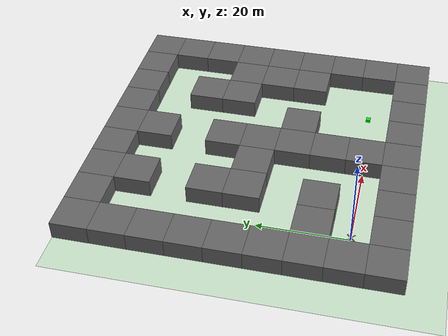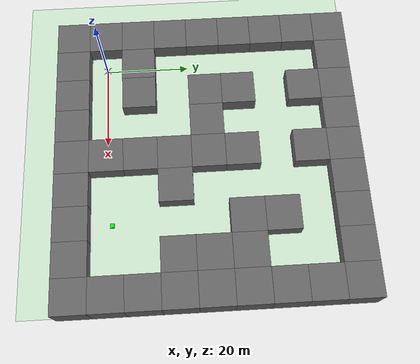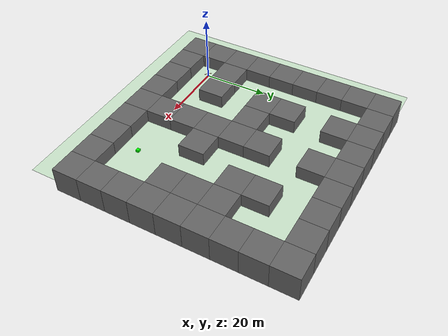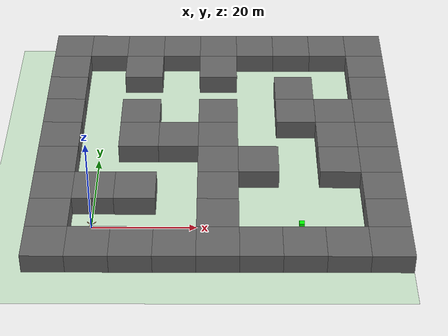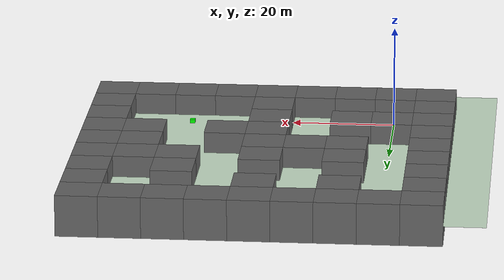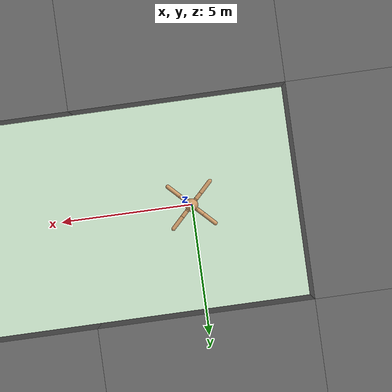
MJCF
<mujoco model="ant">
  <compiler inertiafromgeom="true" angle="degree" coordinate="local" />
  <option timestep="0.02" integrator="RK4" />
  <custom>
    <numeric name="init_qpos" data="0.0 0.0 0.55 1.0 0.0 0.0 0.0 0.0 1.0 0.0 -1.0 0.0 -1.0 0.0 1.0" />
  </custom>
  <default>
    <joint limited="true" armature="1" damping="1" />
    <geom condim="3" conaffinity="0" margin="0.01" friction="1 0.5 0.5" solref=".02 1" solimp=".8 .8 .01" rgba="0.8 0.6 0.4 1" density="5.0" />
  </default>
  <asset>
    <texture type="skybox" builtin="gradient" width="100" height="100" rgb1="1 1 1" rgb2="0 0 0" />
    <texture name="texgeom" type="cube" builtin="flat" mark="cross" width="127" height="1278" rgb1="0.8 0.6 0.4" rgb2="0.8 0.6 0.4" markrgb="1 1 1" random="0.01" />
    <texture name="texplane" type="2d" builtin="checker" rgb1="0 0 0" rgb2="0.8 0.8 0.8" width="100" height="100" />
    <material name='MatPlane' texture="texplane" shininess="1" texrepeat="60 60" specular="1"  reflectance="0.5" />
    <material name='geom' texture="texgeom" texuniform="true" />
  </asset>
  <worldbody>
    <light directional="true" cutoff="100" exponent="1" diffuse="1 1 1" specular=".1 .1 .1" pos="0 0 1.3" dir="-0 0 -1.3" />
    <geom name='floor' pos='20 20 0' size='40 40 40' type='plane' conaffinity='1' rgba='0.8 0.9 0.8 1' condim='3' />
    <body name="torso" pos="0 0 0.75">
      <geom name="torso_geom" type="sphere" size="0.25" pos="0 0 0" />
      <joint name="root" type="free" limited="false" pos="0 0 0" axis="0 0 1" margin="0.01" armature="0" damping="0" />
      <body name="front_left_leg" pos="0 0 0">
        <geom name="aux_1_geom" type="capsule" size="0.08" fromto="0.0 0.0 0.0 0.2 0.2 0.0" />
        <body name="aux_1" pos="0.2 0.2 0">
          <joint name="hip_1" type="hinge" pos="0.0 0.0 0.0" axis="0 0 1" range="-30 30" />
          <geom name="left_leg_geom" type="capsule" size="0.08" fromto="0.0 0.0 0.0 0.2 0.2 0.0" />
          <body pos="0.2 0.2 0">
            <joint name="ankle_1" type="hinge" pos="0.0 0.0 0.0" axis="-1 1 0" range="30 70" />
            <geom name="left_ankle_geom" type="capsule" size="0.08" fromto="0.0 0.0 0.0 0.4 0.4 0.0" />
          </body>
        </body>
      </body>
      <body name="front_right_leg" pos="0 0 0">
        <geom name="aux_2_geom" type="capsule" size="0.08" fromto="0.0 0.0 0.0 -0.2 0.2 0.0" />
        <body name="aux_2" pos="-0.2 0.2 0">
          <joint name="hip_2" type="hinge" pos="0.0 0.0 0.0" axis="0 0 1" range="-30 30" />
          <geom name="right_leg_geom" type="capsule" size="0.08" fromto="0.0 0.0 0.0 -0.2 0.2 0.0" />
          <body pos="-0.2 0.2 0">
            <joint name="ankle_2" type="hinge" pos="0.0 0.0 0.0" axis="1 1 0" range="-70 -30" />
            <geom name="right_ankle_geom" type="capsule" size="0.08" fromto="0.0 0.0 0.0 -0.4 0.4 0.0" />
          </body>
        </body>
      </body>
      <body name="back_leg" pos="0 0 0">
        <geom name="aux_3_geom" type="capsule" size="0.08" fromto="0.0 0.0 0.0 -0.2 -0.2 0.0" />
        <body name="aux_3" pos="-0.2 -0.2 0">
          <joint name="hip_3" type="hinge" pos="0.0 0.0 0.0" axis="0 0 1" range="-30 30" />
          <geom name="back_leg_geom" type="capsule" size="0.08" fromto="0.0 0.0 0.0 -0.2 -0.2 0.0" />
          <body pos="-0.2 -0.2 0">
            <joint name="ankle_3" type="hinge" pos="0.0 0.0 0.0" axis="-1 1 0" range="-70 -30" />
            <geom name="third_ankle_geom" type="capsule" size="0.08" fromto="0.0 0.0 0.0 -0.4 -0.4 0.0" />
          </body>
        </body>
      </body>
      <body name="right_back_leg" pos="0 0 0">
        <geom name="aux_4_geom" type="capsule" size="0.08" fromto="0.0 0.0 0.0 0.2 -0.2 0.0" />
        <body name="aux_4" pos="0.2 -0.2 0">
          <joint name="hip_4" type="hinge" pos="0.0 0.0 0.0" axis="0 0 1" range="-30 30" />
          <geom name="rightback_leg_geom" type="capsule" size="0.08" fromto="0.0 0.0 0.0 0.2 -0.2 0.0" />
          <body pos="0.2 -0.2 0">
            <joint name="ankle_4" type="hinge" pos="0.0 0.0 0.0" axis="1 1 0" range="30 70" />
            <geom name="fourth_ankle_geom" type="capsule" size="0.08" fromto="0.0 0.0 0.0 0.4 -0.4 0.0" />
          </body>
        </body>
      </body>
    </body>

    <body name="goal_point" pos="40.0 1.0 0.12"> <!--name was ee_link--> <!--euler = "-1.570796 0 0"-->
      <site name="goal_point:box" type="box" pos="0.05 0.0 0.0" size="0.5 0.5 0.5"  quat = " 1.0 0.0  0.0 0."     rgba="0 1 0 1" />
    </body>

    <body name="wall" pos="0.0 0.0 0.0">
      <geom name="wall1" type="box" pos="-8 -8 0" size="4 4 4" rgba="0.4 0.4 0.4 1"
                contype="1" conaffinity="1" friction="2 0.1 0.002"/>
      <geom name="wall2" type="box" pos="-8 0 0" size="4 4 4" rgba="0.4 0.4 0.4 1"
                contype="1" conaffinity="1" friction="2 0.1 0.002"/>
      <geom name="wall3" type="box" pos="-8 8 0" size="4 4 4" rgba="0.4 0.4 0.4 1"
                contype="1" conaffinity="1" friction="2 0.1 0.002"/>
      <geom name="wall4" type="box" pos="-8 16 0" size="4 4 4" rgba="0.4 0.4 0.4 1"
                contype="1" conaffinity="1" friction="2 0.1 0.002"/>
      <geom name="wall5" type="box" pos="-8 24 0" size="4 4 4" rgba="0.4 0.4 0.4 1"
                contype="1" conaffinity="1" friction="2 0.1 0.002"/>
      <geom name="wall6" type="box" pos="-8 32 0" size="4 4 4" rgba="0.4 0.4 0.4 1"
                contype="1" conaffinity="1" friction="2 0.1 0.002"/>
      <geom name="wall7" type="box" pos="-8 40 0" size="4 4 4" rgba="0.4 0.4 0.4 1"
                contype="1" conaffinity="1" friction="2 0.1 0.002"/>
      <geom name="wall8" type="box" pos="-8 48 0" size="4 4 4" rgba="0.4 0.4 0.4 1"
                contype="1" conaffinity="1" friction="2 0.1 0.002"/>

      <geom name="wall9" type="box" pos="-8 56 0" size="4 4 4" rgba="0.4 0.4 0.4 1"
                contype="1" conaffinity="1" friction="2 0.1 0.002"/>

      <geom name="wall10" type="box" pos="0 -8 0" size="4 4 4" rgba="0.4 0.4 0.4 1"
                contype="1" conaffinity="1" friction="2 0.1 0.002"/>
      <geom name="wall11" type="box" pos="8 -8 0" size="4 4 4" rgba="0.4 0.4 0.4 1"
                contype="1" conaffinity="1" friction="2 0.1 0.002"/>
      <geom name="wall12" type="box" pos="16 -8 0" size="4 4 4" rgba="0.4 0.4 0.4 1"
                contype="1" conaffinity="1" friction="2 0.1 0.002"/>
      <geom name="wall13" type="box" pos="24 -8 0" size="4 4 4" rgba="0.4 0.4 0.4 1"
                contype="1" conaffinity="1" friction="2 0.1 0.002"/>
      <geom name="wall14" type="box" pos="32 -8 0" size="4 4 4" rgba="0.4 0.4 0.4 1"
                contype="1" conaffinity="1" friction="2 0.1 0.002"/>
      <geom name="wall15" type="box" pos="40 -8  0" size="4 4 4" rgba="0.4 0.4 0.4 1"
                contype="1" conaffinity="1" friction="2 0.1 0.002"/>
      <geom name="wall16" type="box" pos="48 -8 0" size="4 4 4" rgba="0.4 0.4 0.4 1"
                contype="1" conaffinity="1" friction="2 0.1 0.002"/>
      <geom name="wall17" type="box" pos="8 8 0" size="4 4 4" rgba="0.4 0.4 0.4 1"
                contype="1" conaffinity="1" friction="2 0.1 0.002"/>

      <geom name="wall18" type="box" pos="56 0 0" size="4 4 4" rgba="0.4 0.4 0.4 1"
                contype="1" conaffinity="1" friction="2 0.1 0.002"/>
      <geom name="wall19" type="box" pos="56 8 0" size="4 4 4" rgba="0.4 0.4 0.4 1"
                contype="1" conaffinity="1" friction="2 0.1 0.002"/>
      <geom name="wall20" type="box" pos="56 16 0" size="4 4 4" rgba="0.4 0.4 0.4 1"
                contype="1" conaffinity="1" friction="2 0.1 0.002"/>
      <geom name="wall21" type="box" pos="56 24 0" size="4 4 4" rgba="0.4 0.4 0.4 1"
                contype="1" conaffinity="1" friction="2 0.1 0.002"/>
      <geom name="wall22" type="box" pos="56 32 0" size="4 4 4" rgba="0.4 0.4 0.4 1"
                contype="1" conaffinity="1" friction="2 0.1 0.002"/>
      <geom name="wall23" type="box" pos="56 40  0" size="4 4 4" rgba="0.4 0.4 0.4 1"
                contype="1" conaffinity="1" friction="2 0.1 0.002"/>
      <geom name="wall24" type="box" pos="56 48 0" size="4 4 4" rgba="0.4 0.4 0.4 1"
                contype="1" conaffinity="1" friction="2 0.1 0.002"/>
      <geom name="wall25" type="box" pos="56 56 0" size="4 4 4" rgba="0.4 0.4 0.4 1"
                contype="1" conaffinity="1" friction="2 0.1 0.002"/>

      <geom name="wall26" type="box" pos="0 56 0" size="4 4 4" rgba="0.4 0.4 0.4 1"
                contype="1" conaffinity="1" friction="2 0.1 0.002"/>
      <geom name="wall27" type="box" pos="8 56 0" size="4 4 4" rgba="0.4 0.4 0.4 1"
                contype="1" conaffinity="1" friction="2 0.1 0.002"/>
      <geom name="wall28" type="box" pos="16 56 0" size="4 4 4" rgba="0.4 0.4 0.4 1"
                contype="1" conaffinity="1" friction="2 0.1 0.002"/>
      <geom name="wall29" type="box" pos="24 56  0" size="4 4 4" rgba="0.4 0.4 0.4 1"
                contype="1" conaffinity="1" friction="2 0.1 0.002"/>
      <geom name="wall30" type="box" pos="32 56 0" size="4 4 4" rgba="0.4 0.4 0.4 1"
                contype="1" conaffinity="1" friction="2 0.1 0.002"/>
      <geom name="wall31" type="box" pos="40 56 0" size="4 4 4" rgba="0.4 0.4 0.4 1"
                contype="1" conaffinity="1" friction="2 0.1 0.002"/>
      <geom name="wall32" type="box" pos="48 56 0" size="4 4 4" rgba="0.4 0.4 0.4 1"
                contype="1" conaffinity="1" friction="2 0.1 0.002"/>

      <geom name="wall33" type="box" pos="24 0 0" size="4 4 4" rgba="0.4 0.4 0.4 1"
                contype="1" conaffinity="1" friction="2 0.1 0.002"/>

      <geom name="wall34" type="box" pos="0 8 0" size="4 4 4" rgba="0.4 0.4 0.4 1"
                contype="1" conaffinity="1" friction="2 0.1 0.002"/>
      <geom name="wall35" type="box" pos="56 -8 0" size="4 4 4" rgba="0.4 0.4 0.4 1"
                contype="1" conaffinity="1" friction="2 0.1 0.002"/>
      <geom name="wall36" type="box" pos="32 16 0" size="4 4 4" rgba="0.4 0.4 0.4 1"
                contype="1" conaffinity="1" friction="2 0.1 0.002"/>

      <geom name="wall37" type="box" pos="24 16 0" size="4 4 4" rgba="0.4 0.4 0.4 1"
                contype="1" conaffinity="1" friction="2 0.1 0.002"/>
      <geom name="wall38" type="box" pos="48 24 0" size="4 4 4" rgba="0.4 0.4 0.4 1"
                contype="1" conaffinity="1" friction="2 0.1 0.002"/>

      <geom name="wall39" type="box" pos="48 32 0" size="4 4 4" rgba="0.4 0.4 0.4 1"
                contype="1" conaffinity="1" friction="2 0.1 0.002"/>
      <geom name="wall40" type="box" pos="8 24 0" size="4 4 4" rgba="0.4 0.4 0.4 1"
                contype="1" conaffinity="1" friction="2 0.1 0.002"/>
      <geom name="wall41" type="box" pos="16 24 0" size="4 4 4" rgba="0.4 0.4 0.4 1"
                contype="1" conaffinity="1" friction="2 0.1 0.002"/>
      <geom name="wall42" type="box" pos="24 24 0" size="4 4 4" rgba="0.4 0.4 0.4 1"
                contype="1" conaffinity="1" friction="2 0.1 0.002"/>
      <geom name="wall43" type="box" pos="8 32 0" size="4 4 4" rgba="0.4 0.4 0.4 1"
                contype="1" conaffinity="1" friction="2 0.1 0.002"/>
      <geom name="wall44" type="box" pos="8 48 0" size="4 4 4" rgba="0.4 0.4 0.4 1"
                contype="1" conaffinity="1" friction="2 0.1 0.002"/>
      <geom name="wall45" type="box" pos="24 32 0" size="4 4 4" rgba="0.4 0.4 0.4 1"
                contype="1" conaffinity="1" friction="2 0.1 0.002"/>
      <geom name="wall46" type="box" pos="24 48 0" size="4 4 4" rgba="0.4 0.4 0.4 1"
                contype="1" conaffinity="1" friction="2 0.1 0.002"/>

      <geom name="wall47" type="box" pos="40 40 0" size="4 4 4" rgba="0.4 0.4 0.4 1"
                contype="1" conaffinity="1" friction="2 0.1 0.002"/>

      <geom name="wall48" type="box" pos="40 32 0" size="4 4 4" rgba="0.4 0.4 0.4 1"
                contype="1" conaffinity="1" friction="2 0.1 0.002"/>

      <geom name="wall49" type="box" pos="24 8 0" size="4 4 4" rgba="0.4 0.4 0.4 1"
                contype="1" conaffinity="1" friction="2 0.1 0.002"/>
      <geom name="wall50" type="box" pos="48 16 0" size="4 4 4" rgba="0.4 0.4 0.4 1"
                contype="1" conaffinity="1" friction="2 0.1 0.002"/>

    </body>

  </worldbody>
  <actuator>
    <motor joint="hip_4" ctrlrange="-30.0 30.0" ctrllimited="true" />
    <motor joint="ankle_4" ctrlrange="-30.0 30.0" ctrllimited="true" />
    <motor joint="hip_1" ctrlrange="-30.0 30.0" ctrllimited="true" />
    <motor joint="ankle_1" ctrlrange="-30.0 30.0" ctrllimited="true" />
    <motor joint="hip_2" ctrlrange="-30.0 30.0" ctrllimited="true" />
    <motor joint="ankle_2" ctrlrange="-30.0 30.0" ctrllimited="true" />
    <motor joint="hip_3" ctrlrange="-30.0 30.0" ctrllimited="true" />
    <motor joint="ankle_3" ctrlrange="-30.0 30.0" ctrllimited="true" />
  </actuator>
</mujoco>
